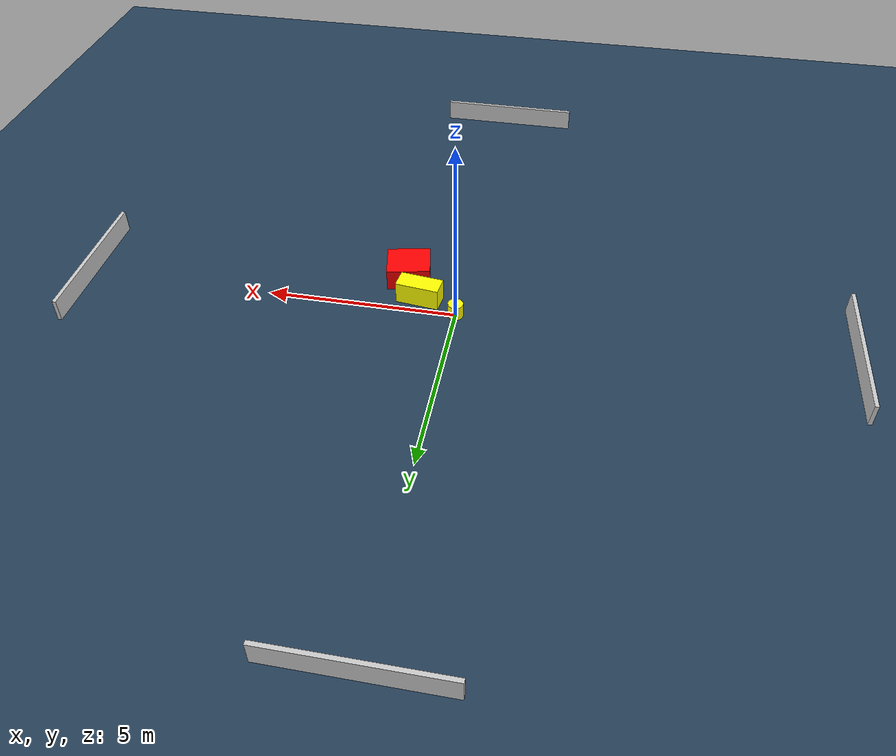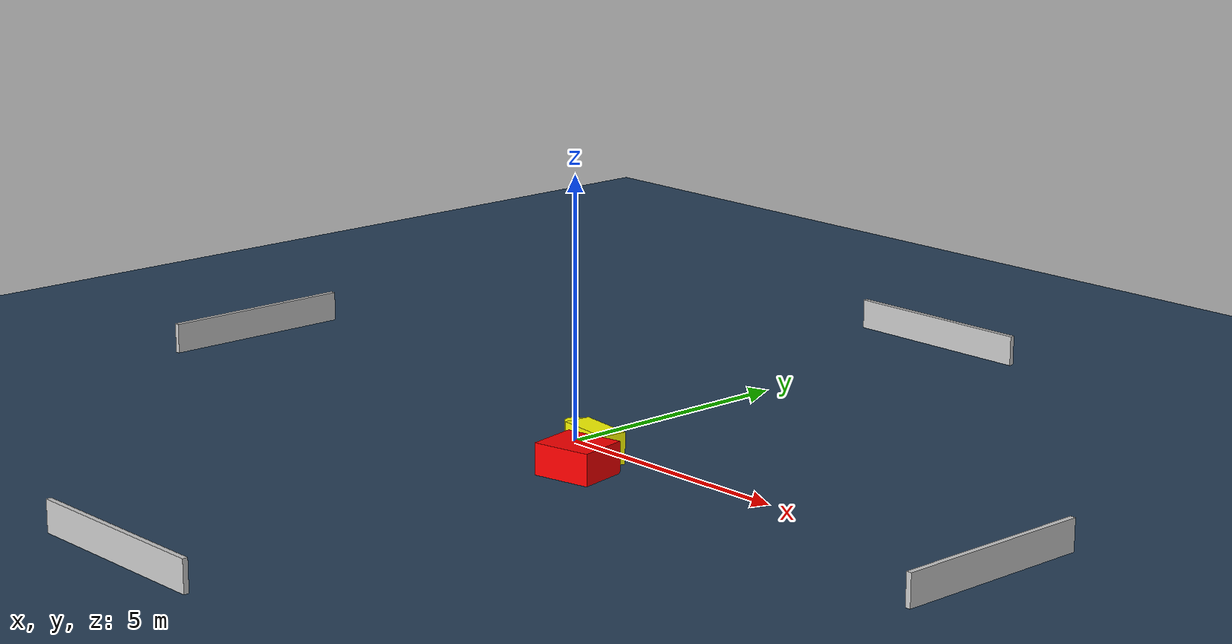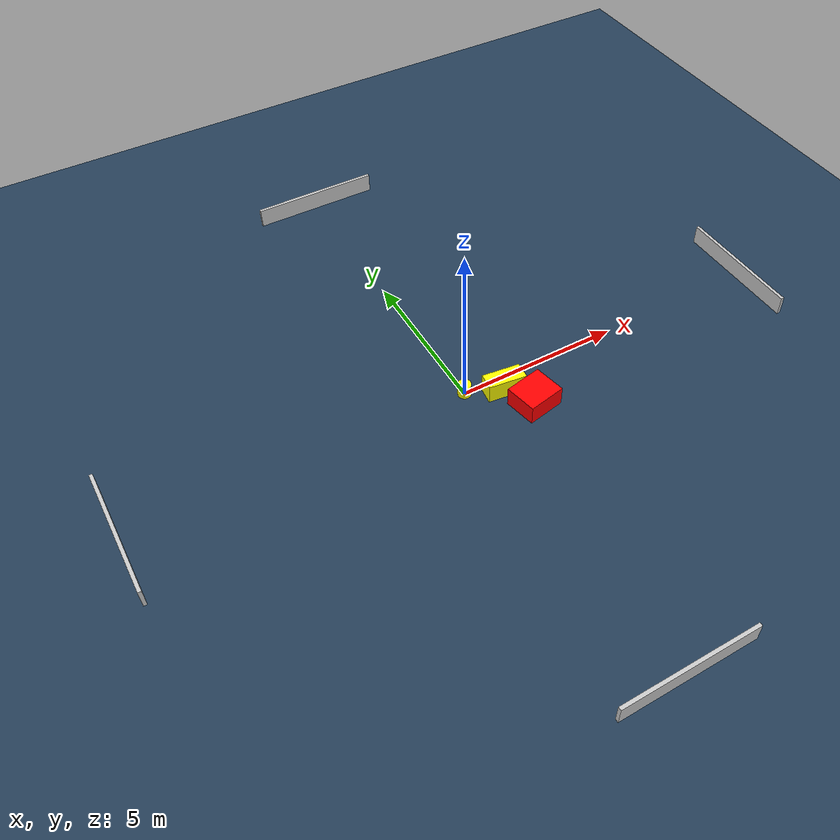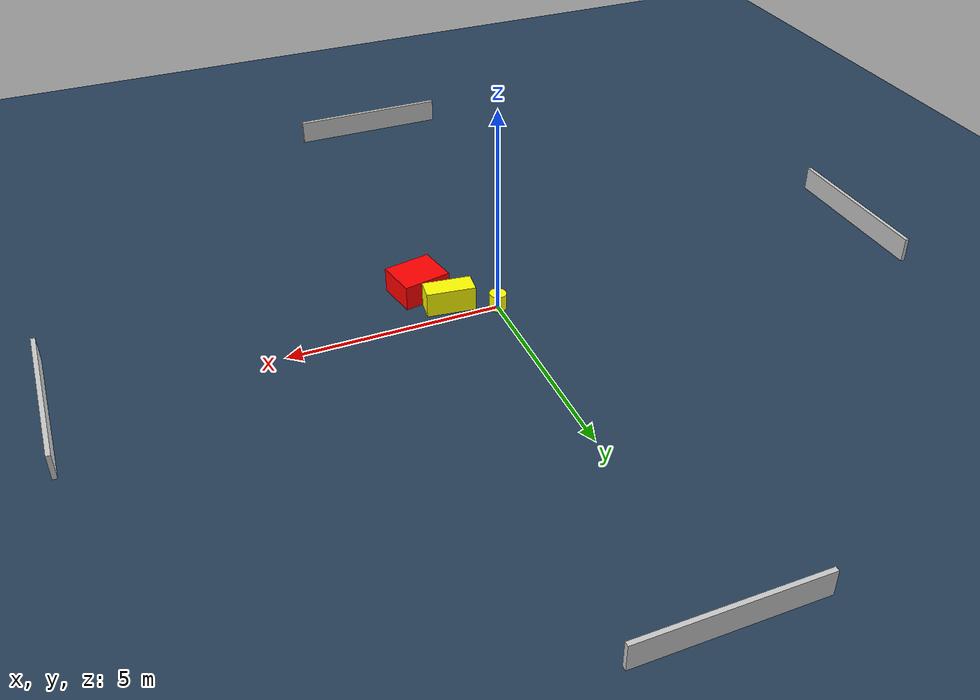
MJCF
<?xml version="1.0" ?>
<mujoco model="generated_environment">
  <option timestep="0.01" integrator="RK4" cone="elliptic"/>
  <default>
    <geom density="1"/>
  </default>
  <asset>
    <texture builtin="gradient" height="3072" name="skybox" rgb1="0.3 0.5 0.7" rgb2="0 0 0" type="skybox" width="512"/>
    <texture builtin="checker" height="300" name="groundplane" rgb1="0.2 0.3 0.4" rgb2="0.1 0.2 0.3" type="2d" width="300"/>
    <material name="groundplane" reflectance="0.2" texrepeat="5 5" texture="groundplane"/>
  </asset>
  <worldbody>
    <light dir="0 0 -1" directional="true" pos="0 0 1.5"/>
    <geom condim="3" friction="0.5 0.005 0.001" material="groundplane" name="floor" pos="0 0 0" size="0 0 0.05" type="plane"/>
    <body name="walls">
      <geom name="wall_1" condim="4" pos="-10.0 0.0 0.3" rgba="0.800000011920929 0.800000011920929 0.800000011920929 1.0" size="0.05 2.0 0.3" type="box"/>
      <geom name="wall_2" condim="4" pos="10.0 0.0 0.3" rgba="0.800000011920929 0.800000011920929 0.800000011920929 1.0" size="0.05 2.0 0.3" type="box"/>
      <geom name="wall_3" condim="4" pos="0.0 -10.0 0.3" rgba="0.800000011920929 0.800000011920929 0.800000011920929 1.0" size="2.0 0.05 0.3" type="box"/>
      <geom name="wall_4" condim="4" pos="0.0 10.0 0.3" rgba="0.800000011920929 0.800000011920929 0.800000011920929 1.0" size="2.0 0.05 0.3" type="box"/>
    </body>
    <body name="robot">
      <joint name="joint_x" type="slide" pos="0 0 0" axis="1 0 0"/>
      <joint name="joint_y" type="slide" pos="0 0 0" axis="0 1 0"/>
      <geom name="robot" type="cylinder" pos="0.0 0.0 0.2" size="0.2 0.2 0.0" mass="5.0" friction="1.0 0.005 0.0001" condim="4" rgba="1.0 1.0 0.0 1.0"/>
    </body>
    <body name="obstacle_1_movable">
      <geom name="obstacle_1_movable" condim="4" pos="1.0390347316751412 -0.447384466599939 0.3" euler="0 0 82.89136542941272" friction="0.0 0.005 0.001" rgba="1.0 1.0 0.0 1.0" size="0.2546361476324127 0.5751736417853255 0.3" type="box" mass="0.1"/>
      <joint type="free"/>
    </body>
    <body name="obstacle_2_static">
      <geom name="obstacle_2_static" condim="4" pos="1.5142638616485031 -1.2991763590143686 0.3" euler="0 0 191.13828194095532" friction="0.0 0.005 0.001" rgba="1.0 0.0 0.0 1.0" size="0.574411298332631 0.49232353477933893 0.3" type="box"/>
    </body>
  </worldbody>
  <actuator>
    <motor name="actuator_x" joint="joint_x" gear="1" ctrlrange="-1 1"/>
    <motor name="actuator_y" joint="joint_y" gear="1" ctrlrange="-1 1"/>
  </actuator>
</mujoco>
